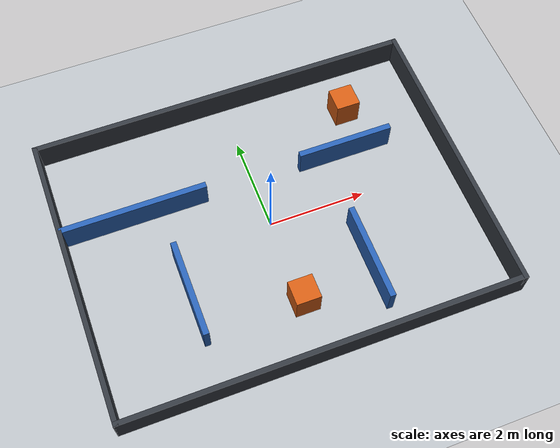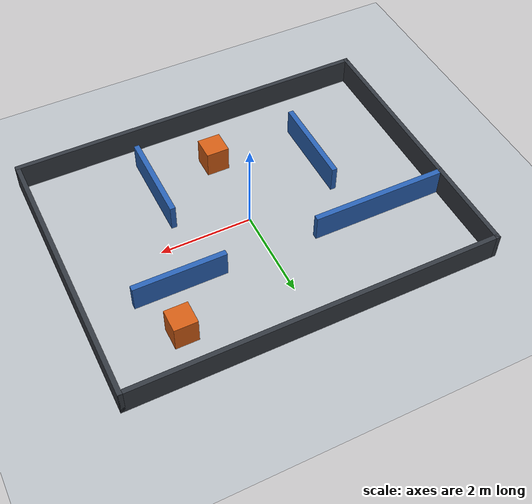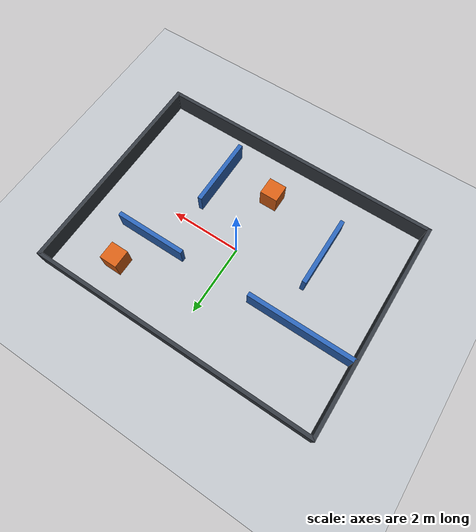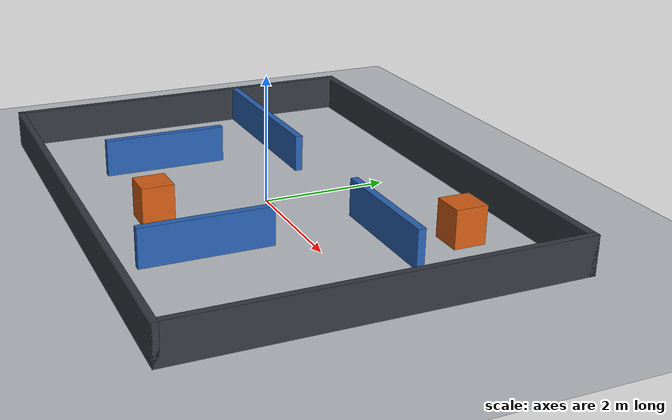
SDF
<?xml version="1.0" ?>
<!-- Generated by scripts/generate_benchmark_assets.py. Do not edit by hand. -->
<sdf version="1.6">
  <world name="nav_benchmark">
    <physics name="1ms" type="ignored">
      <max_step_size>0.001</max_step_size>
      <real_time_factor>1.0</real_time_factor>
    </physics>
    <plugin filename="gz-sim-physics-system"
      name="gz::sim::systems::Physics"/>
    <plugin filename="gz-sim-user-commands-system"
      name="gz::sim::systems::UserCommands"/>
    <plugin filename="gz-sim-scene-broadcaster-system"
      name="gz::sim::systems::SceneBroadcaster"/>
    <plugin filename="gz-sim-imu-system"
      name="gz::sim::systems::Imu"/>
    <plugin filename="gz-sim-sensors-system"
      name="gz::sim::systems::Sensors">
      <render_engine>ogre2</render_engine>
    </plugin>
    <plugin filename="gz-sim-contact-system"
      name="gz::sim::systems::Contact"/>

    <light type="directional" name="sun">
      <cast_shadows>true</cast_shadows>
      <pose>0 0 10 0 0 0</pose>
      <diffuse>0.8 0.8 0.8 1</diffuse>
      <specular>0.2 0.2 0.2 1</specular>
      <attenuation>
        <range>1000</range>
        <constant>0.9</constant>
        <linear>0.01</linear>
        <quadratic>0.001</quadratic>
      </attenuation>
      <direction>-0.5 0.1 -0.9</direction>
    </light>

    <model name="ground_plane">
      <static>true</static>
      <link name="link">
        <collision name="collision">
          <geometry><plane><normal>0 0 1</normal><size>20 20</size></plane></geometry>
        </collision>
        <visual name="visual">
          <geometry><plane><normal>0 0 1</normal><size>20 20</size></plane></geometry>
          <material>
            <ambient>0.72 0.74 0.76 1</ambient>
            <diffuse>0.72 0.74 0.76 1</diffuse>
          </material>
        </visual>
      </link>
    </model>

    <model name="outer_north">
      <static>true</static>
      <pose>0.0 3.0 0.3 0 0 0</pose>
      <link name="link">
        <collision name="collision">
          <geometry><box><size>8.1 0.1 0.6</size></box></geometry>
        </collision>
        <visual name="visual">
          <geometry><box><size>8.1 0.1 0.6</size></box></geometry>
          <material>
            <ambient>0.2 0.22 0.25 1.0</ambient>
            <diffuse>0.2 0.22 0.25 1.0</diffuse>
          </material>
        </visual>
      </link>
    </model>
    <model name="outer_south">
      <static>true</static>
      <pose>0.0 -3.0 0.3 0 0 0</pose>
      <link name="link">
        <collision name="collision">
          <geometry><box><size>8.1 0.1 0.6</size></box></geometry>
        </collision>
        <visual name="visual">
          <geometry><box><size>8.1 0.1 0.6</size></box></geometry>
          <material>
            <ambient>0.2 0.22 0.25 1.0</ambient>
            <diffuse>0.2 0.22 0.25 1.0</diffuse>
          </material>
        </visual>
      </link>
    </model>
    <model name="outer_east">
      <static>true</static>
      <pose>4.0 0.0 0.3 0 0 0</pose>
      <link name="link">
        <collision name="collision">
          <geometry><box><size>0.1 6.1 0.6</size></box></geometry>
        </collision>
        <visual name="visual">
          <geometry><box><size>0.1 6.1 0.6</size></box></geometry>
          <material>
            <ambient>0.2 0.22 0.25 1.0</ambient>
            <diffuse>0.2 0.22 0.25 1.0</diffuse>
          </material>
        </visual>
      </link>
    </model>
    <model name="outer_west">
      <static>true</static>
      <pose>-4.0 0.0 0.3 0 0 0</pose>
      <link name="link">
        <collision name="collision">
          <geometry><box><size>0.1 6.1 0.6</size></box></geometry>
        </collision>
        <visual name="visual">
          <geometry><box><size>0.1 6.1 0.6</size></box></geometry>
          <material>
            <ambient>0.2 0.22 0.25 1.0</ambient>
            <diffuse>0.2 0.22 0.25 1.0</diffuse>
          </material>
        </visual>
      </link>
    </model>
    <model name="west_upper_wall">
      <static>true</static>
      <pose>-2.5 1.0 0.3 0 0 0</pose>
      <link name="link">
        <collision name="collision">
          <geometry><box><size>3.0 0.12 0.6</size></box></geometry>
        </collision>
        <visual name="visual">
          <geometry><box><size>3.0 0.12 0.6</size></box></geometry>
          <material>
            <ambient>0.16 0.38 0.7 1.0</ambient>
            <diffuse>0.16 0.38 0.7 1.0</diffuse>
          </material>
        </visual>
      </link>
    </model>
    <model name="east_upper_wall">
      <static>true</static>
      <pose>2.0 1.0 0.3 0 0 0</pose>
      <link name="link">
        <collision name="collision">
          <geometry><box><size>2.0 0.12 0.6</size></box></geometry>
        </collision>
        <visual name="visual">
          <geometry><box><size>2.0 0.12 0.6</size></box></geometry>
          <material>
            <ambient>0.16 0.38 0.7 1.0</ambient>
            <diffuse>0.16 0.38 0.7 1.0</diffuse>
          </material>
        </visual>
      </link>
    </model>
    <model name="east_lower_wall">
      <static>true</static>
      <pose>1.5 -1.5 0.3 0 0 0</pose>
      <link name="link">
        <collision name="collision">
          <geometry><box><size>0.12 2.0 0.6</size></box></geometry>
        </collision>
        <visual name="visual">
          <geometry><box><size>0.12 2.0 0.6</size></box></geometry>
          <material>
            <ambient>0.16 0.38 0.7 1.0</ambient>
            <diffuse>0.16 0.38 0.7 1.0</diffuse>
          </material>
        </visual>
      </link>
    </model>
    <model name="west_lower_wall">
      <static>true</static>
      <pose>-2.0 -1.0 0.3 0 0 0</pose>
      <link name="link">
        <collision name="collision">
          <geometry><box><size>0.12 2.0 0.6</size></box></geometry>
        </collision>
        <visual name="visual">
          <geometry><box><size>0.12 2.0 0.6</size></box></geometry>
          <material>
            <ambient>0.16 0.38 0.7 1.0</ambient>
            <diffuse>0.16 0.38 0.7 1.0</diffuse>
          </material>
        </visual>
      </link>
    </model>
    <model name="south_center_pillar">
      <static>true</static>
      <pose>0.0 -1.8 0.3 0 0 0</pose>
      <link name="link">
        <collision name="collision">
          <geometry><box><size>0.5 0.5 0.6</size></box></geometry>
        </collision>
        <visual name="visual">
          <geometry><box><size>0.5 0.5 0.6</size></box></geometry>
          <material>
            <ambient>0.82 0.36 0.08 1.0</ambient>
            <diffuse>0.82 0.36 0.08 1.0</diffuse>
          </material>
        </visual>
      </link>
    </model>
    <model name="north_east_pillar">
      <static>true</static>
      <pose>2.4 2.0 0.3 0 0 0</pose>
      <link name="link">
        <collision name="collision">
          <geometry><box><size>0.5 0.5 0.6</size></box></geometry>
        </collision>
        <visual name="visual">
          <geometry><box><size>0.5 0.5 0.6</size></box></geometry>
          <material>
            <ambient>0.82 0.36 0.08 1.0</ambient>
            <diffuse>0.82 0.36 0.08 1.0</diffuse>
          </material>
        </visual>
      </link>
    </model>
  </world>
</sdf>
